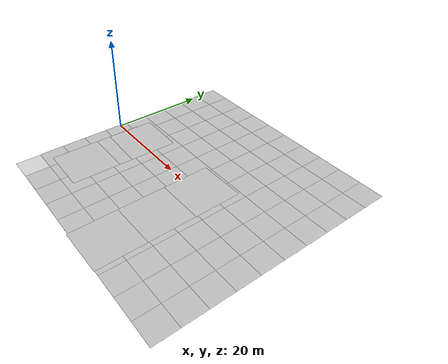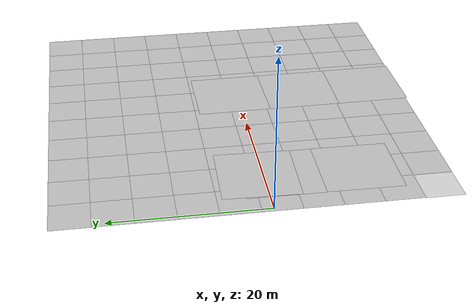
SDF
<sdf version="1.4">
 <world name="default">
  <model name="pavement_plane">
   <static>1</static>
   <link name="link">
    <collision name="collision">
     <geometry><plane><normal>0 0 1</normal><size>50 50</size></plane></geometry>
     <surface><friction><ode><mu>100</mu><mu2>50</mu2></ode></friction></surface>
    </collision>
    <visual name="visual_0">
     <pose>-25 -25 0 0 -0 0</pose>
     <cast_shadows>0</cast_shadows>
     <geometry><plane><normal>0 0 1</normal><size>5 5</size></plane></geometry>
     <material>
      <script>
       <uri>model://pavement_plane/materials/scripts</uri>
       <uri>model://pavement_plane/materials/textures</uri>
       <name>vrc/pavement</name>
      </script>
     </material>
    </visual>
    <visual name="visual_1">
     <pose>-20 -25 0 0 -0 0</pose>
     <cast_shadows>0</cast_shadows>
     <geometry><plane><normal>0 0 1</normal><size>5 5</size></plane></geometry>
     <material>
      <script>
       <uri>model://pavement_plane/materials/scripts</uri>
       <uri>model://pavement_plane/materials/textures</uri>
       <name>vrc/pavement</name>
      </script>
     </material>
    </visual>
    <visual name="visual_2">
     <pose>-15 -25 0 0 -0 0</pose>
     <cast_shadows>0</cast_shadows>
     <geometry><plane><normal>0 0 1</normal><size>5 5</size></plane></geometry>
     <material>
      <script>
       <uri>model://pavement_plane/materials/scripts</uri>
       <uri>model://pavement_plane/materials/textures</uri>
       <name>vrc/pavement</name>
      </script>
     </material>
    </visual>
    <visual name="visual_3">
     <pose>-10 -25 0 0 -0 0</pose>
     <cast_shadows>0</cast_shadows>
     <geometry><plane><normal>0 0 1</normal><size>5 5</size></plane></geometry>
     <material>
      <script>
       <uri>model://pavement_plane/materials/scripts</uri>
       <uri>model://pavement_plane/materials/textures</uri>
       <name>vrc/pavement</name>
      </script>
     </material>
    </visual>
    <visual name="visual_4">
     <pose>-5 -25 0 0 -0 0</pose>
     <cast_shadows>0</cast_shadows>
     <geometry><plane><normal>0 0 1</normal><size>5 5</size></plane></geometry>
     <material>
      <script>
       <uri>model://pavement_plane/materials/scripts</uri>
       <uri>model://pavement_plane/materials/textures</uri>
       <name>vrc/pavement</name>
      </script>
     </material>
    </visual>
    <visual name="visual_5">
     <pose>0 -25 0 0 -0 0</pose>
     <cast_shadows>0</cast_shadows>
     <geometry><plane><normal>0 0 1</normal><size>5 5</size></plane></geometry>
     <material>
      <script>
       <uri>model://pavement_plane/materials/scripts</uri>
       <uri>model://pavement_plane/materials/textures</uri>
       <name>vrc/pavement</name>
      </script>
     </material>
    </visual>
    <visual name="visual_6">
     <pose>5 -25 0 0 -0 0</pose>
     <cast_shadows>0</cast_shadows>
     <geometry><plane><normal>0 0 1</normal><size>5 5</size></plane></geometry>
     <material>
      <script>
       <uri>model://pavement_plane/materials/scripts</uri>
       <uri>model://pavement_plane/materials/textures</uri>
       <name>vrc/pavement</name>
      </script>
     </material>
    </visual>
    <visual name="visual_7">
     <pose>10 -25 0 0 -0 0</pose>
     <cast_shadows>0</cast_shadows>
     <geometry><plane><normal>0 0 1</normal><size>5 5</size></plane></geometry>
     <material>
      <script>
       <uri>model://pavement_plane/materials/scripts</uri>
       <uri>model://pavement_plane/materials/textures</uri>
       <name>vrc/pavement</name>
      </script>
     </material>
    </visual>
    <visual name="visual_8">
     <pose>15 -25 0 0 -0 0</pose>
     <cast_shadows>0</cast_shadows>
     <geometry><plane><normal>0 0 1</normal><size>5 5</size></plane></geometry>
     <material>
      <script>
       <uri>model://pavement_plane/materials/scripts</uri>
       <uri>model://pavement_plane/materials/textures</uri>
       <name>vrc/pavement</name>
      </script>
     </material>
    </visual>
    <visual name="visual_9">
     <pose>20 -25 0 0 -0 0</pose>
     <cast_shadows>0</cast_shadows>
     <geometry><plane><normal>0 0 1</normal><size>5 5</size></plane></geometry>
     <material>
      <script>
       <uri>model://pavement_plane/materials/scripts</uri>
       <uri>model://pavement_plane/materials/textures</uri>
       <name>vrc/pavement</name>
      </script>
     </material>
    </visual>
    <visual name="visual_10">
     <pose>-25 -20 0 0 -0 0</pose>
     <cast_shadows>0</cast_shadows>
     <geometry><plane><normal>0 0 1</normal><size>5 5</size></plane></geometry>
     <material>
      <script>
       <uri>model://pavement_plane/materials/scripts</uri>
       <uri>model://pavement_plane/materials/textures</uri>
       <name>vrc/pavement</name>
      </script>
     </material>
    </visual>
    <visual name="visual_11">
     <pose>-20 -20 0 0 -0 0</pose>
     <cast_shadows>0</cast_shadows>
     <geometry><plane><normal>0 0 1</normal><size>5 5</size></plane></geometry>
     <material>
      <script>
       <uri>model://pavement_plane/materials/scripts</uri>
       <uri>model://pavement_plane/materials/textures</uri>
       <name>vrc/pavement</name>
      </script>
     </material>
    </visual>
    <visual name="visual_12">
     <pose>-15 -20 0 0 -0 0</pose>
     <cast_shadows>0</cast_shadows>
     <geometry><plane><normal>0 0 1</normal><size>5 5</size></plane></geometry>
     <material>
      <script>
       <uri>model://pavement_plane/materials/scripts</uri>
       <uri>model://pavement_plane/materials/textures</uri>
       <name>vrc/pavement</name>
      </script>
     </material>
    </visual>
    <visual name="visual_13">
     <pose>-10 -20 0 0 -0 0</pose>
     <cast_shadows>0</cast_shadows>
     <geometry><plane><normal>0 0 1</normal><size>5 5</size></plane></geometry>
     <material>
      <script>
       <uri>model://pavement_plane/materials/scripts</uri>
       <uri>model://pavement_plane/materials/textures</uri>
       <name>vrc/pavement</name>
      </script>
     </material>
    </visual>
    <visual name="visual_14">
     <pose>-5 -20 0 0 -0 0</pose>
     <cast_shadows>0</cast_shadows>
     <geometry><plane><normal>0 0 1</normal><size>5 5</size></plane></geometry>
     <material>
      <script>
       <uri>model://pavement_plane/materials/scripts</uri>
       <uri>model://pavement_plane/materials/textures</uri>
       <name>vrc/pavement</name>
      </script>
     </material>
    </visual>
    <visual name="visual_15">
     <pose>0 -20 0 0 -0 0</pose>
     <cast_shadows>0</cast_shadows>
     <geometry><plane><normal>0 0 1</normal><size>5 5</size></plane></geometry>
     <material>
      <script>
       <uri>model://pavement_plane/materials/scripts</uri>
       <uri>model://pavement_plane/materials/textures</uri>
       <name>vrc/pavement</name>
      </script>
     </material>
    </visual>
    <visual name="visual_16">
     <pose>5 -20 0 0 -0 0</pose>
     <cast_shadows>0</cast_shadows>
     <geometry><plane><normal>0 0 1</normal><size>5 5</size></plane></geometry>
     <material>
      <script>
       <uri>model://pavement_plane/materials/scripts</uri>
       <uri>model://pavement_plane/materials/textures</uri>
       <name>vrc/pavement</name>
      </script>
     </material>
    </visual>
    <visual name="visual_17">
     <pose>10 -20 0 0 -0 0</pose>
     <cast_shadows>0</cast_shadows>
     <geometry><plane><normal>0 0 1</normal><size>5 5</size></plane></geometry>
     <material>
      <script>
       <uri>model://pavement_plane/materials/scripts</uri>
       <uri>model://pavement_plane/materials/textures</uri>
       <name>vrc/pavement</name>
      </script>
     </material>
    </visual>
    <visual name="visual_18">
     <pose>15 -20 0 0 -0 0</pose>
     <cast_shadows>0</cast_shadows>
     <geometry><plane><normal>0 0 1</normal><size>5 5</size></plane></geometry>
     <material>
      <script>
       <uri>model://pavement_plane/materials/scripts</uri>
       <uri>model://pavement_plane/materials/textures</uri>
       <name>vrc/pavement</name>
      </script>
     </material>
    </visual>
    <visual name="visual_19">
     <pose>20 -20 0 0 -0 0</pose>
     <cast_shadows>0</cast_shadows>
     <geometry><plane><normal>0 0 1</normal><size>5 5</size></plane></geometry>
     <material>
      <script>
       <uri>model://pavement_plane/materials/scripts</uri>
       <uri>model://pavement_plane/materials/textures</uri>
       <name>vrc/pavement</name>
      </script>
     </material>
    </visual>
    <visual name="visual_20">
     <pose>-25 -15 0 0 -0 0</pose>
     <cast_shadows>0</cast_shadows>
     <geometry><plane><normal>0 0 1</normal><size>5 5</size></plane></geometry>
     <material>
      <script>
       <uri>model://pavement_plane/materials/scripts</uri>
       <uri>model://pavement_plane/materials/textures</uri>
       <name>vrc/pavement</name>
      </script>
     </material>
    </visual>
    <visual name="visual_21">
     <pose>-20 -15 0 0 -0 0</pose>
     <cast_shadows>0</cast_shadows>
     <geometry><plane><normal>0 0 1</normal><size>5 5</size></plane></geometry>
     <material>
      <script>
       <uri>model://pavement_plane/materials/scripts</uri>
       <uri>model://pavement_plane/materials/textures</uri>
       <name>vrc/pavement</name>
      </script>
     </material>
    </visual>
    <visual name="visual_22">
     <pose>-15 -15 0 0 -0 0</pose>
     <cast_shadows>0</cast_shadows>
     <geometry><plane><normal>0 0 1</normal><size>5 5</size></plane></geometry>
     <material>
      <script>
       <uri>model://pavement_plane/materials/scripts</uri>
       <uri>model://pavement_plane/materials/textures</uri>
       <name>vrc/pavement</name>
      </script>
     </material>
    </visual>
    <visual name="visual_23">
     <pose>-10 -15 0 0 -0 0</pose>
     <cast_shadows>0</cast_shadows>
     <geometry><plane><normal>0 0 1</normal><size>5 5</size></plane></geometry>
     <material>
      <script>
       <uri>model://pavement_plane/materials/scripts</uri>
       <uri>model://pavement_plane/materials/textures</uri>
       <name>vrc/pavement</name>
      </script>
     </material>
    </visual>
    <visual name="visual_24">
     <pose>-5 -15 0 0 -0 0</pose>
     <cast_shadows>0</cast_shadows>
     <geometry><plane><normal>0 0 1</normal><size>5 5</size></plane></geometry>
     <material>
      <script>
       <uri>model://pavement_plane/materials/scripts</uri>
       <uri>model://pavement_plane/materials/textures</uri>
       <name>vrc/pavement</name>
      </script>
     </material>
    </visual>
    <visual name="visual_25">
     <pose>0 -15 0 0 -0 0</pose>
     <cast_shadows>0</cast_shadows>
     <geometry><plane><normal>0 0 1</normal><size>5 5</size></plane></geometry>
     <material>
      <script>
       <uri>model://pavement_plane/materials/scripts</uri>
       <uri>model://pavement_plane/materials/textures</uri>
       <name>vrc/pavement</name>
      </script>
     </material>
    </visual>
    <visual name="visual_26">
     <pose>5 -15 0 0 -0 0</pose>
     <cast_shadows>0</cast_shadows>
     <geometry><plane><normal>0 0 1</normal><size>5 5</size></plane></geometry>
     <material>
      <script>
       <uri>model://pavement_plane/materials/scripts</uri>
       <uri>model://pavement_plane/materials/textures</uri>
       <name>vrc/pavement</name>
      </script>
     </material>
    </visual>
    <visual name="visual_27">
     <pose>10 -15 0 0 -0 0</pose>
     <cast_shadows>0</cast_shadows>
     <geometry><plane><normal>0 0 1</normal><size>5 5</size></plane></geometry>
     <material>
      <script>
       <uri>model://pavement_plane/materials/scripts</uri>
       <uri>model://pavement_plane/materials/textures</uri>
       <name>vrc/pavement</name>
      </script>
     </material>
    </visual>
    <visual name="visual_28">
     <pose>15 -15 0 0 -0 0</pose>
     <cast_shadows>0</cast_shadows>
     <geometry><plane><normal>0 0 1</normal><size>5 5</size></plane></geometry>
     <material>
      <script>
       <uri>model://pavement_plane/materials/scripts</uri>
       <uri>model://pavement_plane/materials/textures</uri>
       <name>vrc/pavement</name>
      </script>
     </material>
    </visual>
    <visual name="visual_29">
     <pose>20 -15 0 0 -0 0</pose>
     <cast_shadows>0</cast_shadows>
     <geometry><plane><normal>0 0 1</normal><size>5 5</size></plane></geometry>
     <material>
      <script>
       <uri>model://pavement_plane/materials/scripts</uri>
       <uri>model://pavement_plane/materials/textures</uri>
       <name>vrc/pavement</name>
      </script>
     </material>
    </visual>
    <visual name="visual_30">
     <pose>-25 -10 0 0 -0 0</pose>
     <cast_shadows>0</cast_shadows>
     <geometry><plane><normal>0 0 1</normal><size>5 5</size></plane></geometry>
     <material>
      <script>
       <uri>model://pavement_plane/materials/scripts</uri>
       <uri>model://pavement_plane/materials/textures</uri>
       <name>vrc/pavement</name>
      </script>
     </material>
    </visual>
    <visual name="visual_31">
     <pose>-20 -10 0 0 -0 0</pose>
     <cast_shadows>0</cast_shadows>
     <geometry><plane><normal>0 0 1</normal><size>5 5</size></plane></geometry>
     <material>
      <script>
       <uri>model://pavement_plane/materials/scripts</uri>
       <uri>model://pavement_plane/materials/textures</uri>
       <name>vrc/pavement</name>
      </script>
     </material>
    </visual>
    <visual name="visual_32">
     <pose>-15 -10 0 0 -0 0</pose>
     <cast_shadows>0</cast_shadows>
     <geometry><plane><normal>0 0 1</normal><size>5 5</size></plane></geometry>
     <material>
      <script>
       <uri>model://pavement_plane/materials/scripts</uri>
       <uri>model://pavement_plane/materials/textures</uri>
       <name>vrc/pavement</name>
      </script>
     </material>
    </visual>
    <visual name="visual_33">
     <pose>-10 -10 0 0 -0 0</pose>
     <cast_shadows>0</cast_shadows>
     <geometry><plane><normal>0 0 1</normal><size>5 5</size></plane></geometry>
     <material>
      <script>
       <uri>model://pavement_plane/materials/scripts</uri>
       <uri>model://pavement_plane/materials/textures</uri>
       <name>vrc/pavement</name>
      </script>
     </material>
    </visual>
    <visual name="visual_34">
     <pose>-5 -10 0 0 -0 0</pose>
     <cast_shadows>0</cast_shadows>
     <geometry><plane><normal>0 0 1</normal><size>5 5</size></plane></geometry>
     <material>
      <script>
       <uri>model://pavement_plane/materials/scripts</uri>
       <uri>model://pavement_plane/materials/textures</uri>
       <name>vrc/pavement</name>
      </script>
     </material>
    </visual>
    <visual name="visual_35">
     <pose>0 -10 0 0 -0 0</pose>
     <cast_shadows>0</cast_shadows>
     <geometry><plane><normal>0 0 1</normal><size>5 5</size></plane></geometry>
     <material>
      <script>
       <uri>model://pavement_plane/materials/scripts</uri>
       <uri>model://pavement_plane/materials/textures</uri>
       <name>vrc/pavement</name>
      </script>
     </material>
    </visual>
    <visual name="visual_36">
     <pose>5 -10 0 0 -0 0</pose>
     <cast_shadows>0</cast_shadows>
     <geometry><plane><normal>0 0 1</normal><size>5 5</size></plane></geometry>
     <material>
      <script>
       <uri>model://pavement_plane/materials/scripts</uri>
       <uri>model://pavement_plane/materials/textures</uri>
       <name>vrc/pavement</name>
      </script>
     </material>
    </visual>
    <visual name="visual_37">
     <pose>10 -10 0 0 -0 0</pose>
     <cast_shadows>0</cast_shadows>
     <geometry><plane><normal>0 0 1</normal><size>5 5</size></plane></geometry>
     <material>
      <script>
       <uri>model://pavement_plane/materials/scripts</uri>
       <uri>model://pavement_plane/materials/textures</uri>
       <name>vrc/pavement</name>
      </script>
     </material>
    </visual>
    <visual name="visual_38">
     <pose>15 -10 0 0 -0 0</pose>
     <cast_shadows>0</cast_shadows>
     <geometry><plane><normal>0 0 1</normal><size>5 5</size></plane></geometry>
     <material>
      <script>
       <uri>model://pavement_plane/materials/scripts</uri>
       <uri>model://pavement_plane/materials/textures</uri>
       <name>vrc/pavement</name>
      </script>
     </material>
    </visual>
    <visual name="visual_39">
     <pose>20 -10 0 0 -0 0</pose>
     <cast_shadows>0</cast_shadows>
     <geometry><plane><normal>0 0 1</normal><size>5 5</size></plane></geometry>
     <material>
      <script>
       <uri>model://pavement_plane/materials/scripts</uri>
       <uri>model://pavement_plane/materials/textures</uri>
       <name>vrc/pavement</name>
      </script>
     </material>
    </visual>
    <visual name="visual_40">
     <pose>-25 -5 0 0 -0 0</pose>
     <cast_shadows>0</cast_shadows>
     <geometry><plane><normal>0 0 1</normal><size>5 5</size></plane></geometry>
     <material>
      <script>
       <uri>model://pavement_plane/materials/scripts</uri>
       <uri>model://pavement_plane/materials/textures</uri>
       <name>vrc/pavement</name>
      </script>
     </material>
    </visual>
    <visual name="visual_41">
     <pose>-20 -5 0 0 -0 0</pose>
     <cast_shadows>0</cast_shadows>
     <geometry><plane><normal>0 0 1</normal><size>5 5</size></plane></geometry>
     <material>
      <script>
       <uri>model://pavement_plane/materials/scripts</uri>
       <uri>model://pavement_plane/materials/textures</uri>
       <name>vrc/pavement</name>
      </script>
     </material>
    </visual>
    <visual name="visual_42">
     <pose>-15 -5 0 0 -0 0</pose>
     <cast_shadows>0</cast_shadows>
     <geometry><plane><normal>0 0 1</normal><size>5 5</size></plane></geometry>
     <material>
      <script>
       <uri>model://pavement_plane/materials/scripts</uri>
       <uri>model://pavement_plane/materials/textures</uri>
       <name>vrc/pavement</name>
      </script>
     </material>
    </visual>
    <visual name="visual_43">
     <pose>-10 -5 0 0 -0 0</pose>
     <cast_shadows>0</cast_shadows>
     <geometry><plane><normal>0 0 1</normal><size>5 5</size></plane></geometry>
     <material>
      <script>
       <uri>model://pavement_plane/materials/scripts</uri>
       <uri>model://pavement_plane/materials/textures</uri>
       <name>vrc/pavement</name>
      </script>
     </material>
    </visual>
    <visual name="visual_44">
     <pose>-5 -5 0 0 -0 0</pose>
     <cast_shadows>0</cast_shadows>
     <geometry><plane><normal>0 0 1</normal><size>5 5</size></plane></geometry>
     <material>
      <script>
       <uri>model://pavement_plane/materials/scripts</uri>
       <uri>model://pavement_plane/materials/textures</uri>
       <name>vrc/pavement</name>
      </script>
     </material>
    </visual>
    <visual name="visual_45">
     <pose>0 -5 0 0 -0 0</pose>
     <cast_shadows>0</cast_shadows>
     <geometry><plane><normal>0 0 1</normal><size>5 5</size></plane></geometry>
     <material>
      <script>
       <uri>model://pavement_plane/materials/scripts</uri>
       <uri>model://pavement_plane/materials/textures</uri>
       <name>vrc/pavement</name>
      </script>
     </material>
    </visual>
    <visual name="visual_46">
     <pose>5 -5 0 0 -0 0</pose>
     <cast_shadows>0</cast_shadows>
     <geometry><plane><normal>0 0 1</normal><size>5 5</size></plane></geometry>
     <material>
      <script>
       <uri>model://pavement_plane/materials/scripts</uri>
       <uri>model://pavement_plane/materials/textures</uri>
       <name>vrc/pavement</name>
      </script>
     </material>
    </visual>
    <visual name="visual_47">
     <pose>10 -5 0 0 -0 0</pose>
     <cast_shadows>0</cast_shadows>
     <geometry><plane><normal>0 0 1</normal><size>5 5</size></plane></geometry>
     <material>
      <script>
       <uri>model://pavement_plane/materials/scripts</uri>
       <uri>model://pavement_plane/materials/textures</uri>
       <name>vrc/pavement</name>
      </script>
     </material>
    </visual>
    <visual name="visual_48">
     <pose>15 -5 0 0 -0 0</pose>
     <cast_shadows>0</cast_shadows>
     <geometry><plane><normal>0 0 1</normal><size>5 5</size></plane></geometry>
     <material>
      <script>
       <uri>model://pavement_plane/materials/scripts</uri>
       <uri>model://pavement_plane/materials/textures</uri>
       <name>vrc/pavement</name>
      </script>
     </material>
    </visual>
    <visual name="visual_49">
     <pose>20 -5 0 0 -0 0</pose>
     <cast_shadows>0</cast_shadows>
     <geometry><plane><normal>0 0 1</normal><size>5 5</size></plane></geometry>
     <material>
      <script>
       <uri>model://pavement_plane/materials/scripts</uri>
       <uri>model://pavement_plane/materials/textures</uri>
       <name>vrc/pavement</name>
      </script>
     </material>
    </visual>
    <visual name="visual_50">
     <pose>-25 0 0 0 -0 0</pose>
     <cast_shadows>0</cast_shadows>
     <geometry><plane><normal>0 0 1</normal><size>5 5</size></plane></geometry>
     <material>
      <script>
       <uri>model://pavement_plane/materials/scripts</uri>
       <uri>model://pavement_plane/materials/textures</uri>
       <name>vrc/pavement</name>
      </script>
     </material>
    </visual>
    <visual name="visual_51">
     <pose>-20 0 0 0 -0 0</pose>
     <cast_shadows>0</cast_shadows>
     <geometry><plane><normal>0 0 1</normal><size>5 5</size></plane></geometry>
     <material>
      <script>
       <uri>model://pavement_plane/materials/scripts</uri>
       <uri>model://pavement_plane/materials/textures</uri>
       <name>vrc/pavement</name>
      </script>
     </material>
    </visual>
    <visual name="visual_52">
     <pose>-15 0 0 0 -0 0</pose>
     <cast_shadows>0</cast_shadows>
     <geometry><plane><normal>0 0 1</normal><size>5 5</size></plane></geometry>
     <material>
      <script>
       <uri>model://pavement_plane/materials/scripts</uri>
       <uri>model://pavement_plane/materials/textures</uri>
       <name>vrc/pavement</name>
      </script>
     </material>
    </visual>
    <visual name="visual_53">
     <pose>-10 0 0 0 -0 0</pose>
     <cast_shadows>0</cast_shadows>
     <geometry><plane><normal>0 0 1</normal><size>5 5</size></plane></geometry>
     <material>
      <script>
       <uri>model://pavement_plane/materials/scripts</uri>
       <uri>model://pavement_plane/materials/textures</uri>
       <name>vrc/pavement</name>
      </script>
     </material>
    </visual>
    <visual name="visual_54">
     <pose>-5 0 0 0 -0 0</pose>
     <cast_shadows>0</cast_shadows>
     <geometry><plane><normal>0 0 1</normal><size>5 5</size></plane></geometry>
     <material>
      <script>
       <uri>model://pavement_plane/materials/scripts</uri>
       <uri>model://pavement_plane/materials/textures</uri>
       <name>vrc/pavement</name>
      </script>
     </material>
    </visual>
    <visual name="visual_55">
     <cast_shadows>0</cast_shadows>
     <geometry><plane><normal>0 0 1</normal><size>5 5</size></plane></geometry>
     <material>
      <script>
       <uri>model://pavement_plane/materials/scripts</uri>
       <uri>model://pavement_plane/materials/textures</uri>
       <name>vrc/pavement</name>
      </script>
     </material>
    </visual>
    <visual name="visual_56">
     <pose>5 0 0 0 -0 0</pose>
     <cast_shadows>0</cast_shadows>
     <geometry><plane><normal>0 0 1</normal><size>5 5</size></plane></geometry>
     <material>
      <script>
       <uri>model://pavement_plane/materials/scripts</uri>
       <uri>model://pavement_plane/materials/textures</uri>
       <name>vrc/pavement</name>
      </script>
     </material>
    </visual>
    <visual name="visual_57">
     <pose>10 0 0 0 -0 0</pose>
     <cast_shadows>0</cast_shadows>
     <geometry><plane><normal>0 0 1</normal><size>5 5</size></plane></geometry>
     <material>
      <script>
       <uri>model://pavement_plane/materials/scripts</uri>
       <uri>model://pavement_plane/materials/textures</uri>
       <name>vrc/pavement</name>
      </script>
     </material>
    </visual>
    <visual name="visual_58">
     <pose>15 0 0 0 -0 0</pose>
     <cast_shadows>0</cast_shadows>
     <geometry><plane><normal>0 0 1</normal><size>5 5</size></plane></geometry>
     <material>
      <script>
       <uri>model://pavement_plane/materials/scripts</uri>
       <uri>model://pavement_plane/materials/textures</uri>
       <name>vrc/pavement</name>
      </script>
     </material>
    </visual>
    <visual name="visual_59">
     <pose>20 0 0 0 -0 0</pose>
     <cast_shadows>0</cast_shadows>
     <geometry><plane><normal>0 0 1</normal><size>5 5</size></plane></geometry>
     <material>
      <script>
       <uri>model://pavement_plane/materials/scripts</uri>
       <uri>model://pavement_plane/materials/textures</uri>
       <name>vrc/pavement</name>
      </script>
     </material>
    </visual>
    <visual name="visual_60">
     <pose>-25 5 0 0 -0 0</pose>
     <cast_shadows>0</cast_shadows>
     <geometry><plane><normal>0 0 1</normal><size>5 5</size></plane></geometry>
     <material>
      <script>
       <uri>model://pavement_plane/materials/scripts</uri>
       <uri>model://pavement_plane/materials/textures</uri>
       <name>vrc/pavement</name>
      </script>
     </material>
    </visual>
    <visual name="visual_61">
     <pose>-20 5 0 0 -0 0</pose>
     <cast_shadows>0</cast_shadows>
     <geometry><plane><normal>0 0 1</normal><size>5 5</size></plane></geometry>
     <material>
      <script>
       <uri>model://pavement_plane/materials/scripts</uri>
       <uri>model://pavement_plane/materials/textures</uri>
       <name>vrc/pavement</name>
      </script>
     </material>
    </visual>
    <visual name="visual_62">
     <pose>-15 5 0 0 -0 0</pose>
     <cast_shadows>0</cast_shadows>
     <geometry><plane><normal>0 0 1</normal><size>5 5</size></plane></geometry>
     <material>
      <script>
       <uri>model://pavement_plane/materials/scripts</uri>
       <uri>model://pavement_plane/materials/textures</uri>
       <name>vrc/pavement</name>
      </script>
     </material>
    </visual>
    <visual name="visual_63">
     <pose>-10 5 0 0 -0 0</pose>
     <cast_shadows>0</cast_shadows>
     <geometry><plane><normal>0 0 1</normal><size>5 5</size></plane></geometry>
     <material>
      <script>
       <uri>model://pavement_plane/materials/scripts</uri>
       <uri>model://pavement_plane/materials/textures</uri>
       <name>vrc/pavement</name>
      </script>
     </material>
    </visual>
    <visual name="visual_64">
     <pose>-5 5 0 0 -0 0</pose>
     <cast_shadows>0</cast_shadows>
     <geometry><plane><normal>0 0 1</normal><size>5 5</size></plane></geometry>
     <material>
      <script>
       <uri>model://pavement_plane/materials/scripts</uri>
       <uri>model://pavement_plane/materials/textures</uri>
       <name>vrc/pavement</name>
      </script>
     </material>
    </visual>
    <visual name="visual_65">
     <pose>0 5 0 0 -0 0</pose>
     <cast_shadows>0</cast_shadows>
     <geometry><plane><normal>0 0 1</normal><size>5 5</size></plane></geometry>
     <material>
      <script>
       <uri>model://pavement_plane/materials/scripts</uri>
       <uri>model://pavement_plane/materials/textures</uri>
       <name>vrc/pavement</name>
      </script>
     </material>
    </visual>
    <visual name="visual_66">
     <pose>5 5 0 0 -0 0</pose>
     <cast_shadows>0</cast_shadows>
     <geometry><plane><normal>0 0 1</normal><size>5 5</size></plane></geometry>
     <material>
      <script>
       <uri>model://pavement_plane/materials/scripts</uri>
       <uri>model://pavement_plane/materials/textures</uri>
       <name>vrc/pavement</name>
      </script>
     </material>
    </visual>
    <visual name="visual_67">
     <pose>10 5 0 0 -0 0</pose>
     <cast_shadows>0</cast_shadows>
     <geometry><plane><normal>0 0 1</normal><size>5 5</size></plane></geometry>
     <material>
      <script>
       <uri>model://pavement_plane/materials/scripts</uri>
       <uri>model://pavement_plane/materials/textures</uri>
       <name>vrc/pavement</name>
      </script>
     </material>
    </visual>
    <visual name="visual_68">
     <pose>15 5 0 0 -0 0</pose>
     <cast_shadows>0</cast_shadows>
     <geometry><plane><normal>0 0 1</normal><size>5 5</size></plane></geometry>
     <material>
      <script>
       <uri>model://pavement_plane/materials/scripts</uri>
       <uri>model://pavement_plane/materials/textures</uri>
       <name>vrc/pavement</name>
      </script>
     </material>
    </visual>
    <visual name="visual_69">
     <pose>20 5 0 0 -0 0</pose>
     <cast_shadows>0</cast_shadows>
     <geometry><plane><normal>0 0 1</normal><size>5 5</size></plane></geometry>
     <material>
      <script>
       <uri>model://pavement_plane/materials/scripts</uri>
       <uri>model://pavement_plane/materials/textures</uri>
       <name>vrc/pavement</name>
      </script>
     </material>
    </visual>
    <visual name="visual_70">
     <pose>-25 10 0 0 -0 0</pose>
     <cast_shadows>0</cast_shadows>
     <geometry><plane><normal>0 0 1</normal><size>5 5</size></plane></geometry>
     <material>
      <script>
       <uri>model://pavement_plane/materials/scripts</uri>
       <uri>model://pavement_plane/materials/textures</uri>
       <name>vrc/pavement</name>
      </script>
     </material>
    </visual>
    <visual name="visual_71">
     <pose>-20 10 0 0 -0 0</pose>
     <cast_shadows>0</cast_shadows>
     <geometry><plane><normal>0 0 1</normal><size>5 5</size></plane></geometry>
     <material>
      <script>
       <uri>model://pavement_plane/materials/scripts</uri>
       <uri>model://pavement_plane/materials/textures</uri>
       <name>vrc/pavement</name>
      </script>
     </material>
    </visual>
    <visual name="visual_72">
     <pose>-15 10 0 0 -0 0</pose>
     <cast_shadows>0</cast_shadows>
     <geometry><plane><normal>0 0 1</normal><size>5 5</size></plane></geometry>
     <material>
      <script>
       <uri>model://pavement_plane/materials/scripts</uri>
       <uri>model://pavement_plane/materials/textures</uri>
       <name>vrc/pavement</name>
      </script>
     </material>
    </visual>
    <visual name="visual_73">
     <pose>-10 10 0 0 -0 0</pose>
     <cast_shadows>0</cast_shadows>
     <geometry><plane><normal>0 0 1</normal><size>5 5</size></plane></geometry>
     <material>
      <script>
       <uri>model://pavement_plane/materials/scripts</uri>
       <uri>model://pavement_plane/materials/textures</uri>
       <name>vrc/pavement</name>
      </script>
     </material>
    </visual>
    <visual name="visual_74">
     <pose>-5 10 0 0 -0 0</pose>
     <cast_shadows>0</cast_shadows>
     <geometry><plane><normal>0 0 1</normal><size>5 5</size></plane></geometry>
     <material>
      <script>
       <uri>model://pavement_plane/materials/scripts</uri>
       <uri>model://pavement_plane/materials/textures</uri>
       <name>vrc/pavement</name>
      </script>
     </material>
    </visual>
    <visual name="visual_75">
     <pose>0 10 0 0 -0 0</pose>
     <cast_shadows>0</cast_shadows>
     <geometry><plane><normal>0 0 1</normal><size>5 5</size></plane></geometry>
     <material>
      <script>
       <uri>model://pavement_plane/materials/scripts</uri>
       <uri>model://pavement_plane/materials/textures</uri>
       <name>vrc/pavement</name>
      </script>
     </material>
    </visual>
    <visual name="visual_76">
     <pose>5 10 0 0 -0 0</pose>
     <cast_shadows>0</cast_shadows>
     <geometry><plane><normal>0 0 1</normal><size>5 5</size></plane></geometry>
     <material>
      <script>
       <uri>model://pavement_plane/materials/scripts</uri>
       <uri>model://pavement_plane/materials/textures</uri>
       <name>vrc/pavement</name>
      </script>
     </material>
    </visual>
    <visual name="visual_77">
     <pose>10 10 0 0 -0 0</pose>
     <cast_shadows>0</cast_shadows>
     <geometry><plane><normal>0 0 1</normal><size>5 5</size></plane></geometry>
     <material>
      <script>
       <uri>model://pavement_plane/materials/scripts</uri>
       <uri>model://pavement_plane/materials/textures</uri>
       <name>vrc/pavement</name>
      </script>
     </material>
    </visual>
    <visual name="visual_78">
     <pose>15 10 0 0 -0 0</pose>
     <cast_shadows>0</cast_shadows>
     <geometry><plane><normal>0 0 1</normal><size>5 5</size></plane></geometry>
     <material>
      <script>
       <uri>model://pavement_plane/materials/scripts</uri>
       <uri>model://pavement_plane/materials/textures</uri>
       <name>vrc/pavement</name>
      </script>
     </material>
    </visual>
    <visual name="visual_79">
     <pose>20 10 0 0 -0 0</pose>
     <cast_shadows>0</cast_shadows>
     <geometry><plane><normal>0 0 1</normal><size>5 5</size></plane></geometry>
     <material>
      <script>
       <uri>model://pavement_plane/materials/scripts</uri>
       <uri>model://pavement_plane/materials/textures</uri>
       <name>vrc/pavement</name>
      </script>
     </material>
    </visual>
    <visual name="visual_80">
     <pose>-25 15 0 0 -0 0</pose>
     <cast_shadows>0</cast_shadows>
     <geometry><plane><normal>0 0 1</normal><size>5 5</size></plane></geometry>
     <material>
      <script>
       <uri>model://pavement_plane/materials/scripts</uri>
       <uri>model://pavement_plane/materials/textures</uri>
       <name>vrc/pavement</name>
      </script>
     </material>
    </visual>
    <visual name="visual_81">
     <pose>-20 15 0 0 -0 0</pose>
     <cast_shadows>0</cast_shadows>
     <geometry><plane><normal>0 0 1</normal><size>5 5</size></plane></geometry>
     <material>
      <script>
       <uri>model://pavement_plane/materials/scripts</uri>
       <uri>model://pavement_plane/materials/textures</uri>
       <name>vrc/pavement</name>
      </script>
     </material>
    </visual>
    <visual name="visual_82">
     <pose>-15 15 0 0 -0 0</pose>
     <cast_shadows>0</cast_shadows>
     <geometry><plane><normal>0 0 1</normal><size>5 5</size></plane></geometry>
     <material>
      <script>
       <uri>model://pavement_plane/materials/scripts</uri>
       <uri>model://pavement_plane/materials/textures</uri>
       <name>vrc/pavement</name>
      </script>
     </material>
    </visual>
    <visual name="visual_83">
     <pose>-10 15 0 0 -0 0</pose>
     <cast_shadows>0</cast_shadows>
     <geometry><plane><normal>0 0 1</normal><size>5 5</size></plane></geometry>
     <material>
      <script>
       <uri>model://pavement_plane/materials/scripts</uri>
       <uri>model://pavement_plane/materials/textures</uri>
       <name>vrc/pavement</name>
      </script>
     </material>
    </visual>
    <visual name="visual_84">
     <pose>-5 15 0 0 -0 0</pose>
     <cast_shadows>0</cast_shadows>
     <geometry><plane><normal>0 0 1</normal><size>5 5</size></plane></geometry>
     <material>
      <script>
       <uri>model://pavement_plane/materials/scripts</uri>
       <uri>model://pavement_plane/materials/textures</uri>
       <name>vrc/pavement</name>
      </script>
     </material>
    </visual>
    <visual name="visual_85">
     <pose>0 15 0 0 -0 0</pose>
     <cast_shadows>0</cast_shadows>
     <geometry><plane><normal>0 0 1</normal><size>5 5</size></plane></geometry>
     <material>
      <script>
       <uri>model://pavement_plane/materials/scripts</uri>
       <uri>model://pavement_plane/materials/textures</uri>
       <name>vrc/pavement</name>
      </script>
     </material>
    </visual>
    <visual name="visual_86">
     <pose>5 15 0 0 -0 0</pose>
     <cast_shadows>0</cast_shadows>
     <geometry><plane><normal>0 0 1</normal><size>5 5</size></plane></geometry>
     <material>
      <script>
       <uri>model://pavement_plane/materials/scripts</uri>
       <uri>model://pavement_plane/materials/textures</uri>
       <name>vrc/pavement</name>
      </script>
     </material>
    </visual>
    <visual name="visual_87">
     <pose>10 15 0 0 -0 0</pose>
     <cast_shadows>0</cast_shadows>
     <geometry><plane><normal>0 0 1</normal><size>5 5</size></plane></geometry>
     <material>
      <script>
       <uri>model://pavement_plane/materials/scripts</uri>
       <uri>model://pavement_plane/materials/textures</uri>
       <name>vrc/pavement</name>
      </script>
     </material>
    </visual>
    <visual name="visual_88">
     <pose>15 15 0 0 -0 0</pose>
     <cast_shadows>0</cast_shadows>
     <geometry><plane><normal>0 0 1</normal><size>5 5</size></plane></geometry>
     <material>
      <script>
       <uri>model://pavement_plane/materials/scripts</uri>
       <uri>model://pavement_plane/materials/textures</uri>
       <name>vrc/pavement</name>
      </script>
     </material>
    </visual>
    <visual name="visual_89">
     <pose>20 15 0 0 -0 0</pose>
     <cast_shadows>0</cast_shadows>
     <geometry><plane><normal>0 0 1</normal><size>5 5</size></plane></geometry>
     <material>
      <script>
       <uri>model://pavement_plane/materials/scripts</uri>
       <uri>model://pavement_plane/materials/textures</uri>
       <name>vrc/pavement</name>
      </script>
     </material>
    </visual>
    <visual name="visual_90">
     <pose>-25 20 0 0 -0 0</pose>
     <cast_shadows>0</cast_shadows>
     <geometry><plane><normal>0 0 1</normal><size>5 5</size></plane></geometry>
     <material>
      <script>
       <uri>model://pavement_plane/materials/scripts</uri>
       <uri>model://pavement_plane/materials/textures</uri>
       <name>vrc/pavement</name>
      </script>
     </material>
    </visual>
    <visual name="visual_91">
     <pose>-20 20 0 0 -0 0</pose>
     <cast_shadows>0</cast_shadows>
     <geometry><plane><normal>0 0 1</normal><size>5 5</size></plane></geometry>
     <material>
      <script>
       <uri>model://pavement_plane/materials/scripts</uri>
       <uri>model://pavement_plane/materials/textures</uri>
       <name>vrc/pavement</name>
      </script>
     </material>
    </visual>
    <visual name="visual_92">
     <pose>-15 20 0 0 -0 0</pose>
     <cast_shadows>0</cast_shadows>
     <geometry><plane><normal>0 0 1</normal><size>5 5</size></plane></geometry>
     <material>
      <script>
       <uri>model://pavement_plane/materials/scripts</uri>
       <uri>model://pavement_plane/materials/textures</uri>
       <name>vrc/pavement</name>
      </script>
     </material>
    </visual>
    <visual name="visual_93">
     <pose>-10 20 0 0 -0 0</pose>
     <cast_shadows>0</cast_shadows>
     <geometry><plane><normal>0 0 1</normal><size>5 5</size></plane></geometry>
     <material>
      <script>
       <uri>model://pavement_plane/materials/scripts</uri>
       <uri>model://pavement_plane/materials/textures</uri>
       <name>vrc/pavement</name>
      </script>
     </material>
    </visual>
    <visual name="visual_94">
     <pose>-5 20 0 0 -0 0</pose>
     <cast_shadows>0</cast_shadows>
     <geometry><plane><normal>0 0 1</normal><size>5 5</size></plane></geometry>
     <material>
      <script>
       <uri>model://pavement_plane/materials/scripts</uri>
       <uri>model://pavement_plane/materials/textures</uri>
       <name>vrc/pavement</name>
      </script>
     </material>
    </visual>
    <visual name="visual_95">
     <pose>0 20 0 0 -0 0</pose>
     <cast_shadows>0</cast_shadows>
     <geometry><plane><normal>0 0 1</normal><size>5 5</size></plane></geometry>
     <material>
      <script>
       <uri>model://pavement_plane/materials/scripts</uri>
       <uri>model://pavement_plane/materials/textures</uri>
       <name>vrc/pavement</name>
      </script>
     </material>
    </visual>
    <visual name="visual_96">
     <pose>5 20 0 0 -0 0</pose>
     <cast_shadows>0</cast_shadows>
     <geometry><plane><normal>0 0 1</normal><size>5 5</size></plane></geometry>
     <material>
      <script>
       <uri>model://pavement_plane/materials/scripts</uri>
       <uri>model://pavement_plane/materials/textures</uri>
       <name>vrc/pavement</name>
      </script>
     </material>
    </visual>
    <visual name="visual_97">
     <pose>10 20 0 0 -0 0</pose>
     <cast_shadows>0</cast_shadows>
     <geometry><plane><normal>0 0 1</normal><size>5 5</size></plane></geometry>
     <material>
      <script>
       <uri>model://pavement_plane/materials/scripts</uri>
       <uri>model://pavement_plane/materials/textures</uri>
       <name>vrc/pavement</name>
      </script>
     </material>
    </visual>
    <visual name="visual_98">
     <pose>15 20 0 0 -0 0</pose>
     <cast_shadows>0</cast_shadows>
     <geometry><plane><normal>0 0 1</normal><size>5 5</size></plane></geometry>
     <material>
      <script>
       <uri>model://pavement_plane/materials/scripts</uri>
       <uri>model://pavement_plane/materials/textures</uri>
       <name>vrc/pavement</name>
      </script>
     </material>
    </visual>
    <visual name="visual_99">
     <pose>20 20 0 0 -0 0</pose>
     <cast_shadows>0</cast_shadows>
     <geometry><plane><normal>0 0 1</normal><size>5 5</size></plane></geometry>
     <material>
      <script>
       <uri>model://pavement_plane/materials/scripts</uri>
       <uri>model://pavement_plane/materials/textures</uri>
       <name>vrc/pavement</name>
      </script>
     </material>
    </visual>
    <velocity_decay><linear>0</linear><angular>0</angular></velocity_decay>
   </link>
   <pose>27 4 0 0 -0 0</pose>
  </model>
  <model name="Road_straight_5">
   <static>1</static>
   <pose>28.4555 -18.5602 0 0 0 -1.56</pose>
   <link name="link">
    <visual name="visual">
     <pose>0 0 0.04 0 -0 0</pose>
     <geometry>
      <mesh><uri>model://Road_straight/models/Road 01.dae</uri><scale>0.39 0.39 1</scale></mesh>
     </geometry>
    </visual>
    <velocity_decay><linear>0</linear><angular>0</angular></velocity_decay>
   </link>
  </model>
  <model name="Road_straight_6">
   <static>1</static>
   <pose>28.3535 -8.68237 0 0 0 -1.56</pose>
   <link name="link">
    <visual name="visual">
     <pose>0 0 0.04 0 -0 0</pose>
     <geometry>
      <mesh><uri>model://Road_straight/models/Road 01.dae</uri><scale>0.39 0.39 1</scale></mesh>
     </geometry>
    </visual>
    <velocity_decay><linear>0</linear><angular>0</angular></velocity_decay>
   </link>
  </model>
  <model name="Road_straight_7">
   <static>1</static>
   <pose>28.2643 1.1937 0 0 0 -1.56</pose>
   <link name="link">
    <visual name="visual">
     <pose>0 0 0.04 0 -0 0</pose>
     <geometry>
      <mesh><uri>model://Road_straight/models/Road 01.dae</uri><scale>0.39 0.39 1</scale></mesh>
     </geometry>
    </visual>
    <velocity_decay><linear>0</linear><angular>0</angular></velocity_decay>
   </link>
  </model>
  <model name="Road_straight_23">
   <static>1</static>
   <pose>7.45046 0.946529 0.02 0 0 -1.6</pose>
   <link name="link">
    <visual name="visual">
     <pose>0 0 0.04 0 -0 0</pose>
     <geometry>
      <mesh><uri>model://Road_straight/models/Road 01.dae</uri><scale>0.39 0.39 1</scale></mesh>
     </geometry>
    </visual>
    <velocity_decay><linear>0</linear><angular>0</angular></velocity_decay>
   </link>
  </model>
  <model name="Road_straight_24">
   <static>1</static>
   <pose>7.35242 -2.3257 0 0 -0 1.56319</pose>
   <link name="link">
    <visual name="visual">
     <pose>0 0 0.04 0 -0 0</pose>
     <geometry>
      <mesh><uri>model://Road_straight/models/Road 01.dae</uri><scale>0.39 0.39 1</scale></mesh>
     </geometry>
    </visual>
    <velocity_decay><linear>0</linear><angular>0</angular></velocity_decay>
   </link>
  </model>
  <model name="Road_straight_27">
   <static>1</static>
   <pose>7.27004 -12.1899 0.02 0 -0 1.56</pose>
   <link name="link">
    <visual name="visual">
     <pose>0 0 0.04 0 -0 0</pose>
     <geometry>
      <mesh><uri>model://Road_straight/models/Road 01.dae</uri><scale>0.39 0.39 1</scale></mesh>
     </geometry>
    </visual>
    <velocity_decay><linear>0</linear><angular>0</angular></velocity_decay>
   </link>
  </model>
 </world>
</sdf>
